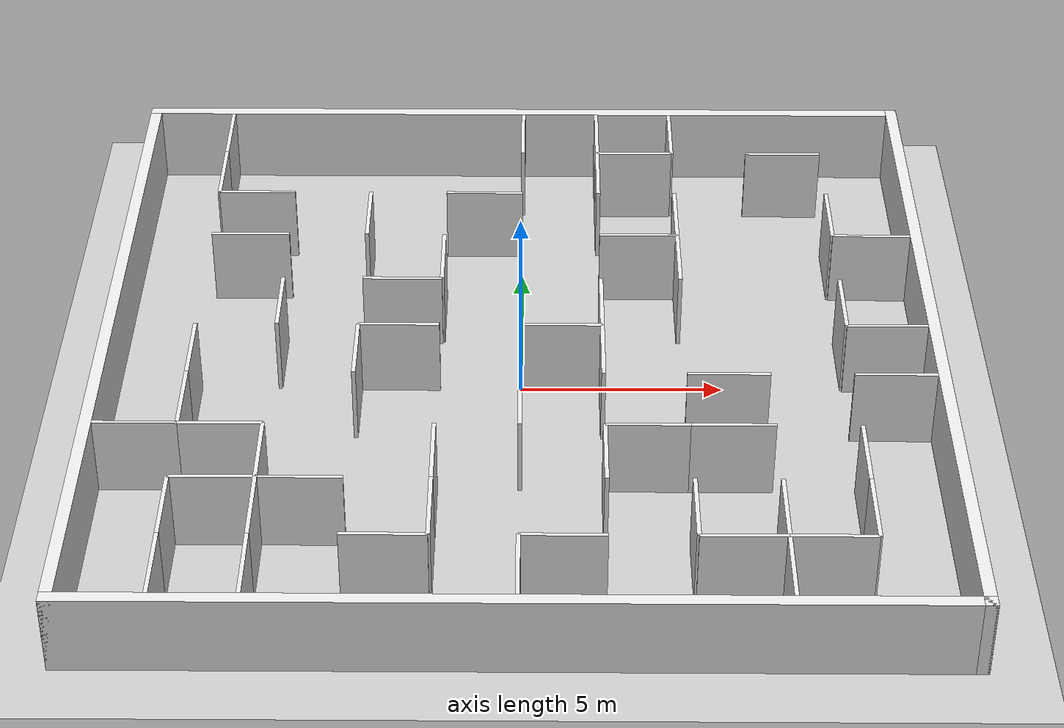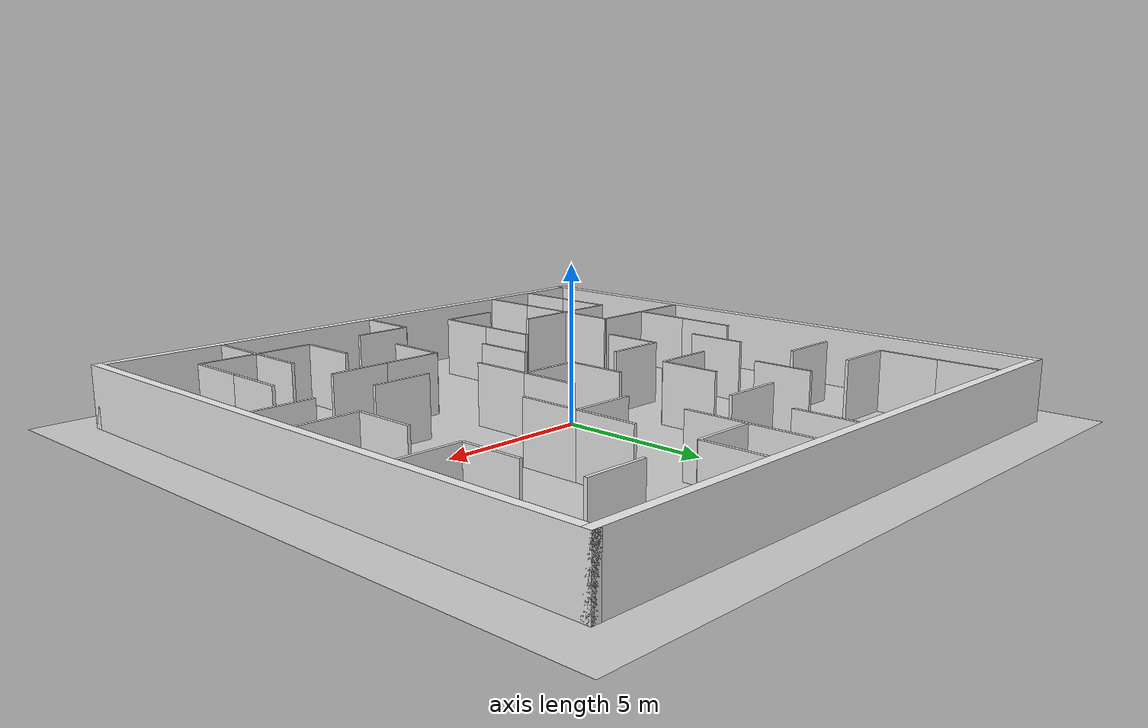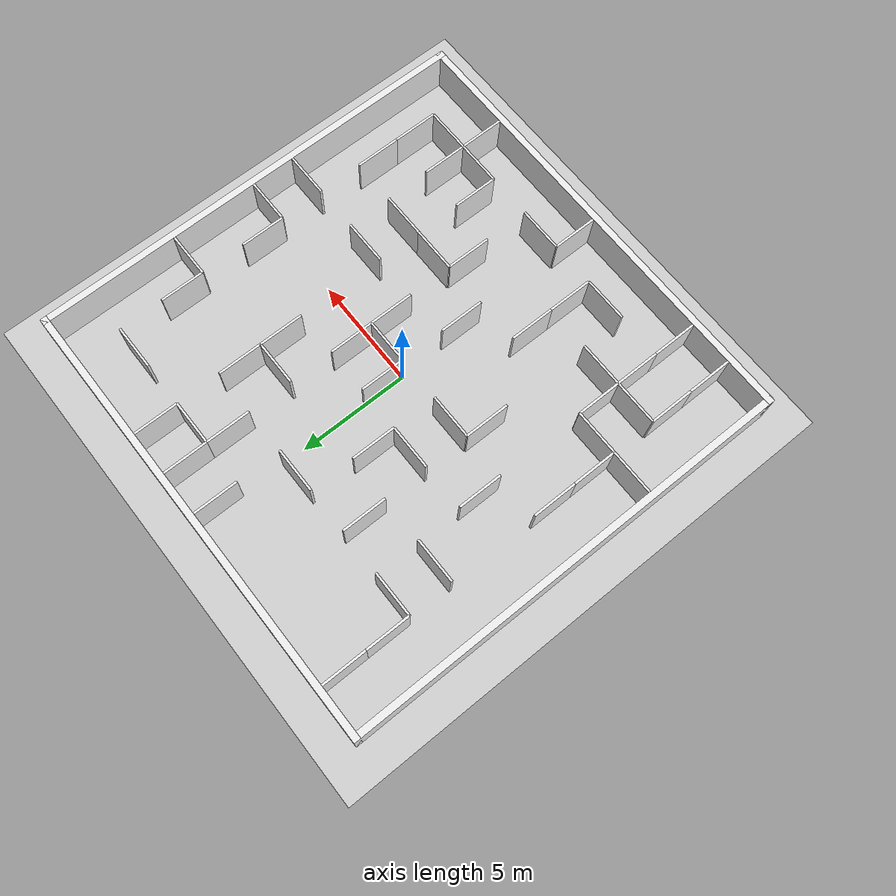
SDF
<sdf version="1.6">
 <world name="default">
  <model name="ground_plane">
   <static>1</static>
   <link name="link">
    <collision name="collision">
     <geometry><plane><normal>0 0 1</normal><size>100 100</size></plane></geometry>
     <surface>
      <contact><collide_bitmask>65535</collide_bitmask></contact>
      <friction><ode><mu>100</mu><mu2>50</mu2></ode></friction>
     </surface>
    </collision>
    <visual name="visual">
     <cast_shadows>0</cast_shadows>
     <geometry><plane><normal>0 0 1</normal><size>100 100</size></plane></geometry>
     <material>
      <script><uri>file://media/materials/scripts/gazebo.material</uri><name>Gazebo/Grey</name></script>
     </material>
    </visual>
   </link>
  </model>
  <model name="simple_box1">
   <static>1</static>
   <pose>0 10.15 1 0 -0 0</pose>
   <link name="link">
    <inertial><mass>1</mass></inertial>
    <collision name="collision"><geometry><box><size>20.6 0.3 2</size></box></geometry></collision>
    <visual name="visual">
     <geometry><box><size>20.6 0.3 2</size></box></geometry>
     <material>
      <script><uri>file://media/materials/scripts/gazebo.material</uri><name>Gazebo/White</name></script>
     </material>
    </visual>
   </link>
  </model>
  <model name="simple_box2">
   <static>1</static>
   <pose>0 -10.15 1 0 -0 0</pose>
   <link name="link">
    <inertial><mass>1</mass></inertial>
    <collision name="collision"><geometry><box><size>20.6 0.3 2</size></box></geometry></collision>
    <visual name="visual">
     <geometry><box><size>20.6 0.3 2</size></box></geometry>
     <material>
      <script><uri>file://media/materials/scripts/gazebo.material</uri><name>Gazebo/White</name></script>
     </material>
    </visual>
   </link>
  </model>
  <model name="simple_box3">
   <static>1</static>
   <pose>10.15 0 1 0 -0 1.57079633</pose>
   <link name="link">
    <inertial><mass>1</mass></inertial>
    <collision name="collision"><geometry><box><size>20.6 0.3 2</size></box></geometry></collision>
    <visual name="visual">
     <geometry><box><size>20.6 0.3 2</size></box></geometry>
     <material>
      <script><uri>file://media/materials/scripts/gazebo.material</uri><name>Gazebo/White</name></script>
     </material>
    </visual>
   </link>
  </model>
  <model name="simple_box4">
   <static>1</static>
   <pose>-10.15 0 1 0 -0 1.57079633</pose>
   <link name="link">
    <inertial><mass>1</mass></inertial>
    <collision name="collision"><geometry><box><size>20.6 0.3 2</size></box></geometry></collision>
    <visual name="visual">
     <geometry><box><size>20.6 0.3 2</size></box></geometry>
     <material>
      <script><uri>file://media/materials/scripts/gazebo.material</uri><name>Gazebo/White</name></script>
     </material>
    </visual>
   </link>
  </model>
  <model name="wall0">
   <static>1</static>
   <pose>-8 -9 1 0 -0 1.5708</pose>
   <link name="link">
    <inertial><mass>1</mass></inertial>
    <collision name="collision"><geometry><box><size>2 0.1 2</size></box></geometry></collision>
    <visual name="visual">
     <geometry><box><size>2 0.1 2</size></box></geometry>
     <material>
      <script><uri>file://media/materials/scripts/gazebo.material</uri><name>Gazebo/White</name></script>
     </material>
    </visual>
   </link>
  </model>
  <model name="wall1">
   <static>1</static>
   <pose>-8 -7 1 0 -0 1.5708</pose>
   <link name="link">
    <inertial><mass>1</mass></inertial>
    <collision name="collision"><geometry><box><size>2 0.1 2</size></box></geometry></collision>
    <visual name="visual">
     <geometry><box><size>2 0.1 2</size></box></geometry>
     <material>
      <script><uri>file://media/materials/scripts/gazebo.material</uri><name>Gazebo/White</name></script>
     </material>
    </visual>
   </link>
  </model>
  <model name="wall2">
   <static>1</static>
   <pose>-8 -3 1 0 -0 1.5708</pose>
   <link name="link">
    <inertial><mass>1</mass></inertial>
    <collision name="collision"><geometry><box><size>2 0.1 2</size></box></geometry></collision>
    <visual name="visual">
     <geometry><box><size>2 0.1 2</size></box></geometry>
     <material>
      <script><uri>file://media/materials/scripts/gazebo.material</uri><name>Gazebo/White</name></script>
     </material>
    </visual>
   </link>
  </model>
  <model name="wall3">
   <static>1</static>
   <pose>-8 -1 1 0 -0 1.5708</pose>
   <link name="link">
    <inertial><mass>1</mass></inertial>
    <collision name="collision"><geometry><box><size>2 0.1 2</size></box></geometry></collision>
    <visual name="visual">
     <geometry><box><size>2 0.1 2</size></box></geometry>
     <material>
      <script><uri>file://media/materials/scripts/gazebo.material</uri><name>Gazebo/White</name></script>
     </material>
    </visual>
   </link>
  </model>
  <model name="wall4">
   <static>1</static>
   <pose>-8 7 1 0 -0 1.5708</pose>
   <link name="link">
    <inertial><mass>1</mass></inertial>
    <collision name="collision"><geometry><box><size>2 0.1 2</size></box></geometry></collision>
    <visual name="visual">
     <geometry><box><size>2 0.1 2</size></box></geometry>
     <material>
      <script><uri>file://media/materials/scripts/gazebo.material</uri><name>Gazebo/White</name></script>
     </material>
    </visual>
   </link>
  </model>
  <model name="wall5">
   <static>1</static>
   <pose>-8 9 1 0 -0 1.5708</pose>
   <link name="link">
    <inertial><mass>1</mass></inertial>
    <collision name="collision"><geometry><box><size>2 0.1 2</size></box></geometry></collision>
    <visual name="visual">
     <geometry><box><size>2 0.1 2</size></box></geometry>
     <material>
      <script><uri>file://media/materials/scripts/gazebo.material</uri><name>Gazebo/White</name></script>
     </material>
    </visual>
   </link>
  </model>
  <model name="wall6">
   <static>1</static>
   <pose>-6 -9 1 0 -0 1.5708</pose>
   <link name="link">
    <inertial><mass>1</mass></inertial>
    <collision name="collision"><geometry><box><size>2 0.1 2</size></box></geometry></collision>
    <visual name="visual">
     <geometry><box><size>2 0.1 2</size></box></geometry>
     <material>
      <script><uri>file://media/materials/scripts/gazebo.material</uri><name>Gazebo/White</name></script>
     </material>
    </visual>
   </link>
  </model>
  <model name="wall7">
   <static>1</static>
   <pose>-6 -7 1 0 -0 1.5708</pose>
   <link name="link">
    <inertial><mass>1</mass></inertial>
    <collision name="collision"><geometry><box><size>2 0.1 2</size></box></geometry></collision>
    <visual name="visual">
     <geometry><box><size>2 0.1 2</size></box></geometry>
     <material>
      <script><uri>file://media/materials/scripts/gazebo.material</uri><name>Gazebo/White</name></script>
     </material>
    </visual>
   </link>
  </model>
  <model name="wall8">
   <static>1</static>
   <pose>-6 -5 1 0 -0 1.5708</pose>
   <link name="link">
    <inertial><mass>1</mass></inertial>
    <collision name="collision"><geometry><box><size>2 0.1 2</size></box></geometry></collision>
    <visual name="visual">
     <geometry><box><size>2 0.1 2</size></box></geometry>
     <material>
      <script><uri>file://media/materials/scripts/gazebo.material</uri><name>Gazebo/White</name></script>
     </material>
    </visual>
   </link>
  </model>
  <model name="wall9">
   <static>1</static>
   <pose>-6 1 1 0 -0 1.5708</pose>
   <link name="link">
    <inertial><mass>1</mass></inertial>
    <collision name="collision"><geometry><box><size>2 0.1 2</size></box></geometry></collision>
    <visual name="visual">
     <geometry><box><size>2 0.1 2</size></box></geometry>
     <material>
      <script><uri>file://media/materials/scripts/gazebo.material</uri><name>Gazebo/White</name></script>
     </material>
    </visual>
   </link>
  </model>
  <model name="wall10">
   <static>1</static>
   <pose>-4 -1 1 0 -0 1.5708</pose>
   <link name="link">
    <inertial><mass>1</mass></inertial>
    <collision name="collision"><geometry><box><size>2 0.1 2</size></box></geometry></collision>
    <visual name="visual">
     <geometry><box><size>2 0.1 2</size></box></geometry>
     <material>
      <script><uri>file://media/materials/scripts/gazebo.material</uri><name>Gazebo/White</name></script>
     </material>
    </visual>
   </link>
  </model>
  <model name="wall11">
   <static>1</static>
   <pose>-4 5 1 0 -0 1.5708</pose>
   <link name="link">
    <inertial><mass>1</mass></inertial>
    <collision name="collision"><geometry><box><size>2 0.1 2</size></box></geometry></collision>
    <visual name="visual">
     <geometry><box><size>2 0.1 2</size></box></geometry>
     <material>
      <script><uri>file://media/materials/scripts/gazebo.material</uri><name>Gazebo/White</name></script>
     </material>
    </visual>
   </link>
  </model>
  <model name="wall12">
   <static>1</static>
   <pose>-2 -7 1 0 -0 1.5708</pose>
   <link name="link">
    <inertial><mass>1</mass></inertial>
    <collision name="collision"><geometry><box><size>2 0.1 2</size></box></geometry></collision>
    <visual name="visual">
     <geometry><box><size>2 0.1 2</size></box></geometry>
     <material>
      <script><uri>file://media/materials/scripts/gazebo.material</uri><name>Gazebo/White</name></script>
     </material>
    </visual>
   </link>
  </model>
  <model name="wall13">
   <static>1</static>
   <pose>-2 -5 1 0 -0 1.5708</pose>
   <link name="link">
    <inertial><mass>1</mass></inertial>
    <collision name="collision"><geometry><box><size>2 0.1 2</size></box></geometry></collision>
    <visual name="visual">
     <geometry><box><size>2 0.1 2</size></box></geometry>
     <material>
      <script><uri>file://media/materials/scripts/gazebo.material</uri><name>Gazebo/White</name></script>
     </material>
    </visual>
   </link>
  </model>
  <model name="wall14">
   <static>1</static>
   <pose>-2 3 1 0 -0 1.5708</pose>
   <link name="link">
    <inertial><mass>1</mass></inertial>
    <collision name="collision"><geometry><box><size>2 0.1 2</size></box></geometry></collision>
    <visual name="visual">
     <geometry><box><size>2 0.1 2</size></box></geometry>
     <material>
      <script><uri>file://media/materials/scripts/gazebo.material</uri><name>Gazebo/White</name></script>
     </material>
    </visual>
   </link>
  </model>
  <model name="wall15">
   <static>1</static>
   <pose>0 -9 1 0 -0 1.5708</pose>
   <link name="link">
    <inertial><mass>1</mass></inertial>
    <collision name="collision"><geometry><box><size>2 0.1 2</size></box></geometry></collision>
    <visual name="visual">
     <geometry><box><size>2 0.1 2</size></box></geometry>
     <material>
      <script><uri>file://media/materials/scripts/gazebo.material</uri><name>Gazebo/White</name></script>
     </material>
    </visual>
   </link>
  </model>
  <model name="wall16">
   <static>1</static>
   <pose>0 -3 1 0 -0 1.5708</pose>
   <link name="link">
    <inertial><mass>1</mass></inertial>
    <collision name="collision"><geometry><box><size>2 0.1 2</size></box></geometry></collision>
    <visual name="visual">
     <geometry><box><size>2 0.1 2</size></box></geometry>
     <material>
      <script><uri>file://media/materials/scripts/gazebo.material</uri><name>Gazebo/White</name></script>
     </material>
    </visual>
   </link>
  </model>
  <model name="wall17">
   <static>1</static>
   <pose>0 1 1 0 -0 1.5708</pose>
   <link name="link">
    <inertial><mass>1</mass></inertial>
    <collision name="collision"><geometry><box><size>2 0.1 2</size></box></geometry></collision>
    <visual name="visual">
     <geometry><box><size>2 0.1 2</size></box></geometry>
     <material>
      <script><uri>file://media/materials/scripts/gazebo.material</uri><name>Gazebo/White</name></script>
     </material>
    </visual>
   </link>
  </model>
  <model name="wall18">
   <static>1</static>
   <pose>0 9 1 0 -0 1.5708</pose>
   <link name="link">
    <inertial><mass>1</mass></inertial>
    <collision name="collision"><geometry><box><size>2 0.1 2</size></box></geometry></collision>
    <visual name="visual">
     <geometry><box><size>2 0.1 2</size></box></geometry>
     <material>
      <script><uri>file://media/materials/scripts/gazebo.material</uri><name>Gazebo/White</name></script>
     </material>
    </visual>
   </link>
  </model>
  <model name="wall19">
   <static>1</static>
   <pose>2 -5 1 0 -0 1.5708</pose>
   <link name="link">
    <inertial><mass>1</mass></inertial>
    <collision name="collision"><geometry><box><size>2 0.1 2</size></box></geometry></collision>
    <visual name="visual">
     <geometry><box><size>2 0.1 2</size></box></geometry>
     <material>
      <script><uri>file://media/materials/scripts/gazebo.material</uri><name>Gazebo/White</name></script>
     </material>
    </visual>
   </link>
  </model>
  <model name="wall20">
   <static>1</static>
   <pose>2 -1 1 0 -0 1.5708</pose>
   <link name="link">
    <inertial><mass>1</mass></inertial>
    <collision name="collision"><geometry><box><size>2 0.1 2</size></box></geometry></collision>
    <visual name="visual">
     <geometry><box><size>2 0.1 2</size></box></geometry>
     <material>
      <script><uri>file://media/materials/scripts/gazebo.material</uri><name>Gazebo/White</name></script>
     </material>
    </visual>
   </link>
  </model>
  <model name="wall21">
   <static>1</static>
   <pose>2 1 1 0 -0 1.5708</pose>
   <link name="link">
    <inertial><mass>1</mass></inertial>
    <collision name="collision"><geometry><box><size>2 0.1 2</size></box></geometry></collision>
    <visual name="visual">
     <geometry><box><size>2 0.1 2</size></box></geometry>
     <material>
      <script><uri>file://media/materials/scripts/gazebo.material</uri><name>Gazebo/White</name></script>
     </material>
    </visual>
   </link>
  </model>
  <model name="wall22">
   <static>1</static>
   <pose>2 7 1 0 -0 1.5708</pose>
   <link name="link">
    <inertial><mass>1</mass></inertial>
    <collision name="collision"><geometry><box><size>2 0.1 2</size></box></geometry></collision>
    <visual name="visual">
     <geometry><box><size>2 0.1 2</size></box></geometry>
     <material>
      <script><uri>file://media/materials/scripts/gazebo.material</uri><name>Gazebo/White</name></script>
     </material>
    </visual>
   </link>
  </model>
  <model name="wall23">
   <static>1</static>
   <pose>2 9 1 0 -0 1.5708</pose>
   <link name="link">
    <inertial><mass>1</mass></inertial>
    <collision name="collision"><geometry><box><size>2 0.1 2</size></box></geometry></collision>
    <visual name="visual">
     <geometry><box><size>2 0.1 2</size></box></geometry>
     <material>
      <script><uri>file://media/materials/scripts/gazebo.material</uri><name>Gazebo/White</name></script>
     </material>
    </visual>
   </link>
  </model>
  <model name="wall24">
   <static>1</static>
   <pose>4 -7 1 0 -0 1.5708</pose>
   <link name="link">
    <inertial><mass>1</mass></inertial>
    <collision name="collision"><geometry><box><size>2 0.1 2</size></box></geometry></collision>
    <visual name="visual">
     <geometry><box><size>2 0.1 2</size></box></geometry>
     <material>
      <script><uri>file://media/materials/scripts/gazebo.material</uri><name>Gazebo/White</name></script>
     </material>
    </visual>
   </link>
  </model>
  <model name="wall25">
   <static>1</static>
   <pose>4 3 1 0 -0 1.5708</pose>
   <link name="link">
    <inertial><mass>1</mass></inertial>
    <collision name="collision"><geometry><box><size>2 0.1 2</size></box></geometry></collision>
    <visual name="visual">
     <geometry><box><size>2 0.1 2</size></box></geometry>
     <material>
      <script><uri>file://media/materials/scripts/gazebo.material</uri><name>Gazebo/White</name></script>
     </material>
    </visual>
   </link>
  </model>
  <model name="wall26">
   <static>1</static>
   <pose>4 5 1 0 -0 1.5708</pose>
   <link name="link">
    <inertial><mass>1</mass></inertial>
    <collision name="collision"><geometry><box><size>2 0.1 2</size></box></geometry></collision>
    <visual name="visual">
     <geometry><box><size>2 0.1 2</size></box></geometry>
     <material>
      <script><uri>file://media/materials/scripts/gazebo.material</uri><name>Gazebo/White</name></script>
     </material>
    </visual>
   </link>
  </model>
  <model name="wall27">
   <static>1</static>
   <pose>4 9 1 0 -0 1.5708</pose>
   <link name="link">
    <inertial><mass>1</mass></inertial>
    <collision name="collision"><geometry><box><size>2 0.1 2</size></box></geometry></collision>
    <visual name="visual">
     <geometry><box><size>2 0.1 2</size></box></geometry>
     <material>
      <script><uri>file://media/materials/scripts/gazebo.material</uri><name>Gazebo/White</name></script>
     </material>
    </visual>
   </link>
  </model>
  <model name="wall28">
   <static>1</static>
   <pose>6 -9 1 0 -0 1.5708</pose>
   <link name="link">
    <inertial><mass>1</mass></inertial>
    <collision name="collision"><geometry><box><size>2 0.1 2</size></box></geometry></collision>
    <visual name="visual">
     <geometry><box><size>2 0.1 2</size></box></geometry>
     <material>
      <script><uri>file://media/materials/scripts/gazebo.material</uri><name>Gazebo/White</name></script>
     </material>
    </visual>
   </link>
  </model>
  <model name="wall29">
   <static>1</static>
   <pose>6 -7 1 0 -0 1.5708</pose>
   <link name="link">
    <inertial><mass>1</mass></inertial>
    <collision name="collision"><geometry><box><size>2 0.1 2</size></box></geometry></collision>
    <visual name="visual">
     <geometry><box><size>2 0.1 2</size></box></geometry>
     <material>
      <script><uri>file://media/materials/scripts/gazebo.material</uri><name>Gazebo/White</name></script>
     </material>
    </visual>
   </link>
  </model>
  <model name="wall30">
   <static>1</static>
   <pose>8 -7 1 0 -0 1.5708</pose>
   <link name="link">
    <inertial><mass>1</mass></inertial>
    <collision name="collision"><geometry><box><size>2 0.1 2</size></box></geometry></collision>
    <visual name="visual">
     <geometry><box><size>2 0.1 2</size></box></geometry>
     <material>
      <script><uri>file://media/materials/scripts/gazebo.material</uri><name>Gazebo/White</name></script>
     </material>
    </visual>
   </link>
  </model>
  <model name="wall31">
   <static>1</static>
   <pose>8 -5 1 0 -0 1.5708</pose>
   <link name="link">
    <inertial><mass>1</mass></inertial>
    <collision name="collision"><geometry><box><size>2 0.1 2</size></box></geometry></collision>
    <visual name="visual">
     <geometry><box><size>2 0.1 2</size></box></geometry>
     <material>
      <script><uri>file://media/materials/scripts/gazebo.material</uri><name>Gazebo/White</name></script>
     </material>
    </visual>
   </link>
  </model>
  <model name="wall32">
   <static>1</static>
   <pose>8 1 1 0 -0 1.5708</pose>
   <link name="link">
    <inertial><mass>1</mass></inertial>
    <collision name="collision"><geometry><box><size>2 0.1 2</size></box></geometry></collision>
    <visual name="visual">
     <geometry><box><size>2 0.1 2</size></box></geometry>
     <material>
      <script><uri>file://media/materials/scripts/gazebo.material</uri><name>Gazebo/White</name></script>
     </material>
    </visual>
   </link>
  </model>
  <model name="wall33">
   <static>1</static>
   <pose>8 5 1 0 -0 1.5708</pose>
   <link name="link">
    <inertial><mass>1</mass></inertial>
    <collision name="collision"><geometry><box><size>2 0.1 2</size></box></geometry></collision>
    <visual name="visual">
     <geometry><box><size>2 0.1 2</size></box></geometry>
     <material>
      <script><uri>file://media/materials/scripts/gazebo.material</uri><name>Gazebo/White</name></script>
     </material>
    </visual>
   </link>
  </model>
  <model name="wall34">
   <static>1</static>
   <pose>-9 -4 1 0 -0 0</pose>
   <link name="link">
    <inertial><mass>1</mass></inertial>
    <collision name="collision"><geometry><box><size>2 0.1 2</size></box></geometry></collision>
    <visual name="visual">
     <geometry><box><size>2 0.1 2</size></box></geometry>
     <material>
      <script><uri>file://media/materials/scripts/gazebo.material</uri><name>Gazebo/White</name></script>
     </material>
    </visual>
   </link>
  </model>
  <model name="wall35">
   <static>1</static>
   <pose>-7 -6 1 0 -0 0</pose>
   <link name="link">
    <inertial><mass>1</mass></inertial>
    <collision name="collision"><geometry><box><size>2 0.1 2</size></box></geometry></collision>
    <visual name="visual">
     <geometry><box><size>2 0.1 2</size></box></geometry>
     <material>
      <script><uri>file://media/materials/scripts/gazebo.material</uri><name>Gazebo/White</name></script>
     </material>
    </visual>
   </link>
  </model>
  <model name="wall36">
   <static>1</static>
   <pose>-7 -4 1 0 -0 0</pose>
   <link name="link">
    <inertial><mass>1</mass></inertial>
    <collision name="collision"><geometry><box><size>2 0.1 2</size></box></geometry></collision>
    <visual name="visual">
     <geometry><box><size>2 0.1 2</size></box></geometry>
     <material>
      <script><uri>file://media/materials/scripts/gazebo.material</uri><name>Gazebo/White</name></script>
     </material>
    </visual>
   </link>
  </model>
  <model name="wall37">
   <static>1</static>
   <pose>-7 4 1 0 -0 0</pose>
   <link name="link">
    <inertial><mass>1</mass></inertial>
    <collision name="collision"><geometry><box><size>2 0.1 2</size></box></geometry></collision>
    <visual name="visual">
     <geometry><box><size>2 0.1 2</size></box></geometry>
     <material>
      <script><uri>file://media/materials/scripts/gazebo.material</uri><name>Gazebo/White</name></script>
     </material>
    </visual>
   </link>
  </model>
  <model name="wall38">
   <static>1</static>
   <pose>-7 6 1 0 -0 0</pose>
   <link name="link">
    <inertial><mass>1</mass></inertial>
    <collision name="collision"><geometry><box><size>2 0.1 2</size></box></geometry></collision>
    <visual name="visual">
     <geometry><box><size>2 0.1 2</size></box></geometry>
     <material>
      <script><uri>file://media/materials/scripts/gazebo.material</uri><name>Gazebo/White</name></script>
     </material>
    </visual>
   </link>
  </model>
  <model name="wall39">
   <static>1</static>
   <pose>-5 -6 1 0 -0 0</pose>
   <link name="link">
    <inertial><mass>1</mass></inertial>
    <collision name="collision"><geometry><box><size>2 0.1 2</size></box></geometry></collision>
    <visual name="visual">
     <geometry><box><size>2 0.1 2</size></box></geometry>
     <material>
      <script><uri>file://media/materials/scripts/gazebo.material</uri><name>Gazebo/White</name></script>
     </material>
    </visual>
   </link>
  </model>
  <model name="wall40">
   <static>1</static>
   <pose>-3 -8 1 0 -0 0</pose>
   <link name="link">
    <inertial><mass>1</mass></inertial>
    <collision name="collision"><geometry><box><size>2 0.1 2</size></box></geometry></collision>
    <visual name="visual">
     <geometry><box><size>2 0.1 2</size></box></geometry>
     <material>
      <script><uri>file://media/materials/scripts/gazebo.material</uri><name>Gazebo/White</name></script>
     </material>
    </visual>
   </link>
  </model>
  <model name="wall41">
   <static>1</static>
   <pose>-3 0 1 0 -0 0</pose>
   <link name="link">
    <inertial><mass>1</mass></inertial>
    <collision name="collision"><geometry><box><size>2 0.1 2</size></box></geometry></collision>
    <visual name="visual">
     <geometry><box><size>2 0.1 2</size></box></geometry>
     <material>
      <script><uri>file://media/materials/scripts/gazebo.material</uri><name>Gazebo/White</name></script>
     </material>
    </visual>
   </link>
  </model>
  <model name="wall42">
   <static>1</static>
   <pose>-3 2 1 0 -0 0</pose>
   <link name="link">
    <inertial><mass>1</mass></inertial>
    <collision name="collision"><geometry><box><size>2 0.1 2</size></box></geometry></collision>
    <visual name="visual">
     <geometry><box><size>2 0.1 2</size></box></geometry>
     <material>
      <script><uri>file://media/materials/scripts/gazebo.material</uri><name>Gazebo/White</name></script>
     </material>
    </visual>
   </link>
  </model>
  <model name="wall43">
   <static>1</static>
   <pose>-1 6 1 0 -0 0</pose>
   <link name="link">
    <inertial><mass>1</mass></inertial>
    <collision name="collision"><geometry><box><size>2 0.1 2</size></box></geometry></collision>
    <visual name="visual">
     <geometry><box><size>2 0.1 2</size></box></geometry>
     <material>
      <script><uri>file://media/materials/scripts/gazebo.material</uri><name>Gazebo/White</name></script>
     </material>
    </visual>
   </link>
  </model>
  <model name="wall44">
   <static>1</static>
   <pose>1 -8 1 0 -0 0</pose>
   <link name="link">
    <inertial><mass>1</mass></inertial>
    <collision name="collision"><geometry><box><size>2 0.1 2</size></box></geometry></collision>
    <visual name="visual">
     <geometry><box><size>2 0.1 2</size></box></geometry>
     <material>
      <script><uri>file://media/materials/scripts/gazebo.material</uri><name>Gazebo/White</name></script>
     </material>
    </visual>
   </link>
  </model>
  <model name="wall45">
   <static>1</static>
   <pose>1 0 1 0 -0 0</pose>
   <link name="link">
    <inertial><mass>1</mass></inertial>
    <collision name="collision"><geometry><box><size>2 0.1 2</size></box></geometry></collision>
    <visual name="visual">
     <geometry><box><size>2 0.1 2</size></box></geometry>
     <material>
      <script><uri>file://media/materials/scripts/gazebo.material</uri><name>Gazebo/White</name></script>
     </material>
    </visual>
   </link>
  </model>
  <model name="wall46">
   <static>1</static>
   <pose>3 -4 1 0 -0 0</pose>
   <link name="link">
    <inertial><mass>1</mass></inertial>
    <collision name="collision"><geometry><box><size>2 0.1 2</size></box></geometry></collision>
    <visual name="visual">
     <geometry><box><size>2 0.1 2</size></box></geometry>
     <material>
      <script><uri>file://media/materials/scripts/gazebo.material</uri><name>Gazebo/White</name></script>
     </material>
    </visual>
   </link>
  </model>
  <model name="wall47">
   <static>1</static>
   <pose>3 4 1 0 -0 0</pose>
   <link name="link">
    <inertial><mass>1</mass></inertial>
    <collision name="collision"><geometry><box><size>2 0.1 2</size></box></geometry></collision>
    <visual name="visual">
     <geometry><box><size>2 0.1 2</size></box></geometry>
     <material>
      <script><uri>file://media/materials/scripts/gazebo.material</uri><name>Gazebo/White</name></script>
     </material>
    </visual>
   </link>
  </model>
  <model name="wall48">
   <static>1</static>
   <pose>3 8 1 0 -0 0</pose>
   <link name="link">
    <inertial><mass>1</mass></inertial>
    <collision name="collision"><geometry><box><size>2 0.1 2</size></box></geometry></collision>
    <visual name="visual">
     <geometry><box><size>2 0.1 2</size></box></geometry>
     <material>
      <script><uri>file://media/materials/scripts/gazebo.material</uri><name>Gazebo/White</name></script>
     </material>
    </visual>
   </link>
  </model>
  <model name="wall49">
   <static>1</static>
   <pose>5 -8 1 0 -0 0</pose>
   <link name="link">
    <inertial><mass>1</mass></inertial>
    <collision name="collision"><geometry><box><size>2 0.1 2</size></box></geometry></collision>
    <visual name="visual">
     <geometry><box><size>2 0.1 2</size></box></geometry>
     <material>
      <script><uri>file://media/materials/scripts/gazebo.material</uri><name>Gazebo/White</name></script>
     </material>
    </visual>
   </link>
  </model>
  <model name="wall50">
   <static>1</static>
   <pose>5 -4 1 0 -0 0</pose>
   <link name="link">
    <inertial><mass>1</mass></inertial>
    <collision name="collision"><geometry><box><size>2 0.1 2</size></box></geometry></collision>
    <visual name="visual">
     <geometry><box><size>2 0.1 2</size></box></geometry>
     <material>
      <script><uri>file://media/materials/scripts/gazebo.material</uri><name>Gazebo/White</name></script>
     </material>
    </visual>
   </link>
  </model>
  <model name="wall51">
   <static>1</static>
   <pose>5 -2 1 0 -0 0</pose>
   <link name="link">
    <inertial><mass>1</mass></inertial>
    <collision name="collision"><geometry><box><size>2 0.1 2</size></box></geometry></collision>
    <visual name="visual">
     <geometry><box><size>2 0.1 2</size></box></geometry>
     <material>
      <script><uri>file://media/materials/scripts/gazebo.material</uri><name>Gazebo/White</name></script>
     </material>
    </visual>
   </link>
  </model>
  <model name="wall52">
   <static>1</static>
   <pose>7 -8 1 0 -0 0</pose>
   <link name="link">
    <inertial><mass>1</mass></inertial>
    <collision name="collision"><geometry><box><size>2 0.1 2</size></box></geometry></collision>
    <visual name="visual">
     <geometry><box><size>2 0.1 2</size></box></geometry>
     <material>
      <script><uri>file://media/materials/scripts/gazebo.material</uri><name>Gazebo/White</name></script>
     </material>
    </visual>
   </link>
  </model>
  <model name="wall53">
   <static>1</static>
   <pose>7 8 1 0 -0 0</pose>
   <link name="link">
    <inertial><mass>1</mass></inertial>
    <collision name="collision"><geometry><box><size>2 0.1 2</size></box></geometry></collision>
    <visual name="visual">
     <geometry><box><size>2 0.1 2</size></box></geometry>
     <material>
      <script><uri>file://media/materials/scripts/gazebo.material</uri><name>Gazebo/White</name></script>
     </material>
    </visual>
   </link>
  </model>
  <model name="wall54">
   <static>1</static>
   <pose>9 -2 1 0 -0 0</pose>
   <link name="link">
    <inertial><mass>1</mass></inertial>
    <collision name="collision"><geometry><box><size>2 0.1 2</size></box></geometry></collision>
    <visual name="visual">
     <geometry><box><size>2 0.1 2</size></box></geometry>
     <material>
      <script><uri>file://media/materials/scripts/gazebo.material</uri><name>Gazebo/White</name></script>
     </material>
    </visual>
   </link>
  </model>
  <model name="wall55">
   <static>1</static>
   <pose>9 0 1 0 -0 0</pose>
   <link name="link">
    <inertial><mass>1</mass></inertial>
    <collision name="collision"><geometry><box><size>2 0.1 2</size></box></geometry></collision>
    <visual name="visual">
     <geometry><box><size>2 0.1 2</size></box></geometry>
     <material>
      <script><uri>file://media/materials/scripts/gazebo.material</uri><name>Gazebo/White</name></script>
     </material>
    </visual>
   </link>
  </model>
  <model name="wall56">
   <static>1</static>
   <pose>9 4 1 0 -0 0</pose>
   <link name="link">
    <inertial><mass>1</mass></inertial>
    <collision name="collision"><geometry><box><size>2 0.1 2</size></box></geometry></collision>
    <visual name="visual">
     <geometry><box><size>2 0.1 2</size></box></geometry>
     <material>
      <script><uri>file://media/materials/scripts/gazebo.material</uri><name>Gazebo/White</name></script>
     </material>
    </visual>
   </link>
  </model>
 </world>
</sdf>
